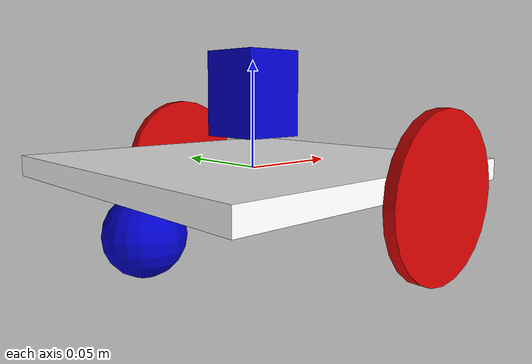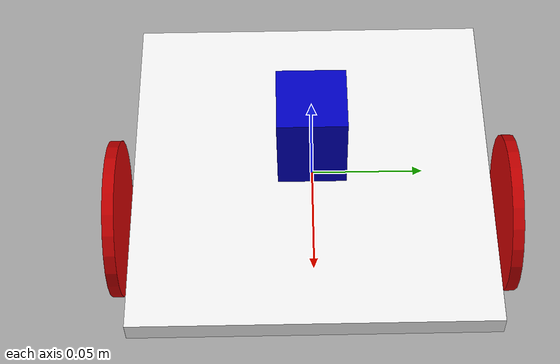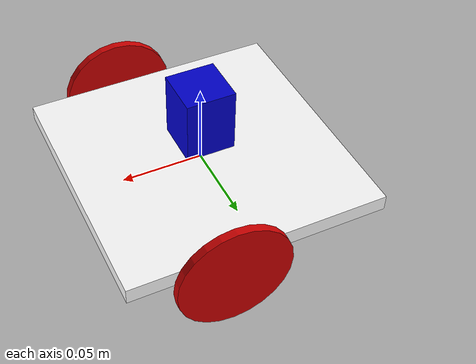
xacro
<?xml version="1.0"?>
<robot name="differential_robot" xmlns:xacro="http://www.ros.org/wiki/xacro">

    <xacro:property name="chassis_width" value="0.16"/>
    <xacro:property name="chassis_len" value="0.16"/>
    <xacro:property name="chassis_mass" value="10.0"/>
    <xacro:property name="wheel_radius" value="0.035"/>
    <xacro:property name="caster_wheel_radius" value="0.0175"/>
    <xacro:property name="caster_wheel_mass" value="10.0"/>
    <xacro:property name="chassis_wheel_gap" value="0.007"/>
    <xacro:property name="wheel_separation" value="0.15"/>
    <xacro:property name="wheel_joint_offset" value="0.02"/>
    <xacro:property name="wheel_mass" value="5.0"/>
    <xacro:property name="caster_wheel_joint_offset" value="-0.06"/>

    <xacro:property name="laser_size_x" value="0.03"/>
    <xacro:property name="laser_size_y" value="0.03"/>
    <xacro:property name="laser_size_z" value="0.04"/>
    <xacro:property name="laser_origin_x" value="0.0"/>
    <xacro:property name="laser_origin_y" value="0.0"/>
    <xacro:property name="laser_origin_z" value="0.035"/>

    <material name="blue">
        <color rgba="0 0 0.8 1"/>
    </material>
    <material name="black">
        <color rgba="0 0 0 1"/>
    </material>
    <material name="white">
        <color rgba="1 1 1 1"/>
    </material>
    <material name="red">
        <color rgba="0.8 0.0 0.0 1.0"/>
    </material>

    <!-- ********************** MACROS ********************** -->

    <xacro:macro name="box_inertia" params="m w h d">  <!-- mass width height depth -->
        <inertial>
            <mass value="${m}"/>
            <inertia ixx="${m / 12.0 * (d*d + h*h)}" ixy="0.0" ixz="0.0"
                     iyy="${m / 12.0 * (w*w + h*h)}" iyz="0.0"
                     izz="${m / 12.0 * (w*w + d*d)}"/>
        </inertial>
    </xacro:macro>

    <xacro:macro name="cylinder_inertia" params="m r h"> <!-- mass radius height -->
        <inertial>
            <mass value="${m}"/>
            <inertia ixx="${m*(3*r*r+h*h)/12}" ixy = "0" ixz = "0"
                     iyy="${m*(3*r*r+h*h)/12}" iyz = "0"
                     izz="${m*r*r/2}"/>
        </inertial>
    </xacro:macro>

    <xacro:macro name="wheel" params="prefix reflect">
        <link name="${prefix}_wheel">
            <visual>
                <origin xyz="0 0 0" rpy="${pi/2} 0 0"/>
                <geometry>
                    <cylinder radius="${wheel_radius}" length="0.005"/>
                </geometry>
                <material name="red"/>
            </visual>
            <collision>
                <origin xyz="0 0 0" rpy="${pi/2} 0 0"/>
                <geometry>
                    <cylinder radius="${wheel_radius}" length="0.005"/>
                </geometry>
            </collision>
            <xacro:cylinder_inertia m="${wheel_mass}" r="${wheel_radius}" h="0.005"/>
        </link>

        <joint name="${prefix}_wheel_joint" type="continuous">
            <axis xyz="0 1 0" rpy="0 0 0" />
            <parent link="chassis"/>
            <child link="${prefix}_wheel"/>
            <origin xyz="${wheel_joint_offset} ${((chassis_width/2)+chassis_wheel_gap)*reflect} -0.005" rpy="0 0 0"/>
        </joint>
    </xacro:macro>

    <xacro:macro name="sphere_inertia" params="m r"> <!-- mass radius -->
        <inertial>
            <mass value="${m}"/>
            <inertia ixx="${2.0*m*(r*r)/5.0}" ixy="0.0" ixz="0.0"
                     iyy="${2.0*m*(r*r)/5.0}" iyz="0.0"
                     izz="${2.0*m*(r*r)/5.0}"/>
        </inertial>
    </xacro:macro>

    <!-- ********************** ROBOT DESCRIPTION ********************** -->

    <link name="chassis">
    </link>

    <link name="dummy_link">
        <xacro:box_inertia m="${chassis_mass}" w="${chassis_len}" h="${chassis_width}" d="0.01"/>
        <visual>
            <geometry>
                <box size="${chassis_len} ${chassis_width} 0.01"/>
            </geometry>
            <material name="white"/>
        </visual>
        <collision>
            <geometry>
                <box size="${chassis_len} ${chassis_width} 0.01"/>
            </geometry>
        </collision>
    </link>

    <joint name="base_dummy_joint" type="fixed">
        <parent link="chassis"/>
        <child link="dummy_link"/>
    </joint>

    <xacro:wheel prefix="left" reflect="1"/>
    <xacro:wheel prefix="right" reflect="-1"/>

    <link name="caster_wheel">
        <visual>
            <origin xyz="0 0 0" rpy="0 0 0"/>
            <geometry>
                <sphere radius="${caster_wheel_radius}"/>
            </geometry>
            <material name="blue"/>
        </visual>
        <collision>
            <origin xyz="0 0 0" rpy="0 0 0"/>
            <geometry>
                <sphere radius="${caster_wheel_radius}"/>
            </geometry>
        </collision>
        <xacro:sphere_inertia m="${caster_wheel_mass}" r="${caster_wheel_radius}"/>
    </link>

    <joint name="caster_wheel_joint" type="continuous">
        <axis xyz="0 1 0" rpy="0 0 0" />
        <parent link="chassis"/>
        <child link="caster_wheel"/>
        <origin xyz="${caster_wheel_joint_offset} 0 -${caster_wheel_radius+0.005}" rpy="0 0 0"/>
    </joint>

    <link name="sensor_laser">
        <visual>
            <geometry>
                <box size="${laser_size_x} ${laser_size_y} ${laser_size_z}"/>
            </geometry>
            <material name="blue"/>
        </visual>
        <collision>
        <geometry>
            <box size="${laser_size_x} ${laser_size_y} ${laser_size_z}"/>
        </geometry>
        </collision>
        <xacro:box_inertia m="0.2" w="${laser_size_x}" h="${laser_size_y}" d="${laser_size_z}"/>
    </link>

    <joint name="sensor_laser_joint" type="fixed">
        <origin xyz="${laser_origin_x} ${laser_origin_y} ${laser_origin_z}" rpy="0 0 0" />
        <parent link="chassis"/>
        <child link="sensor_laser" />
    </joint>

    <xacro:include filename="$(find pa_mobile_robot)/simulation/urdf/differential_robot_gazebo_plugins.xacro"/>

</robot>
